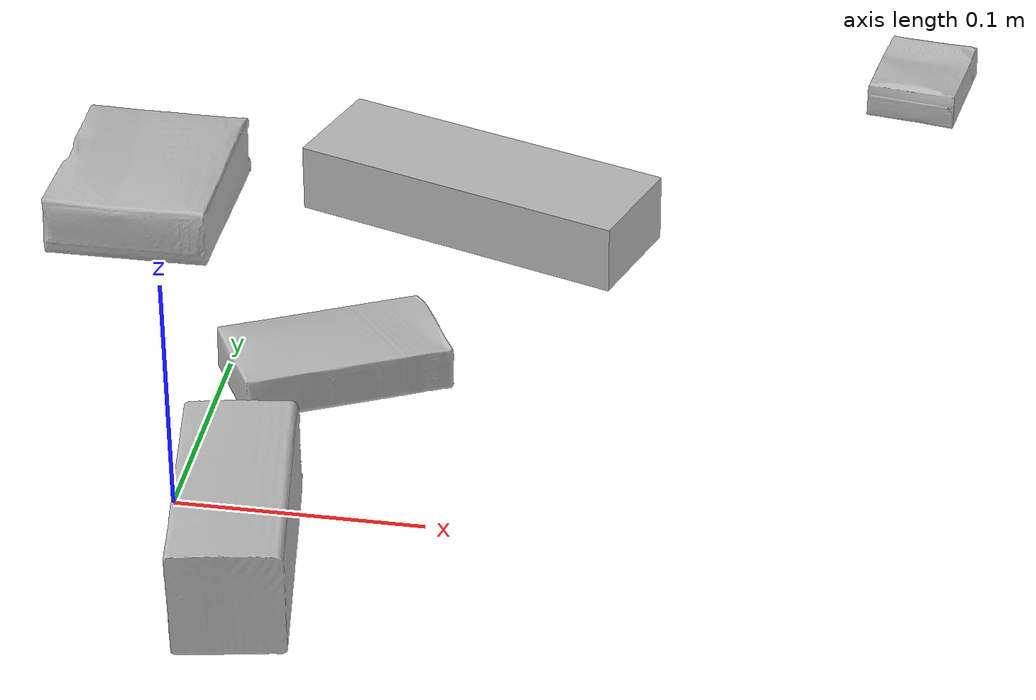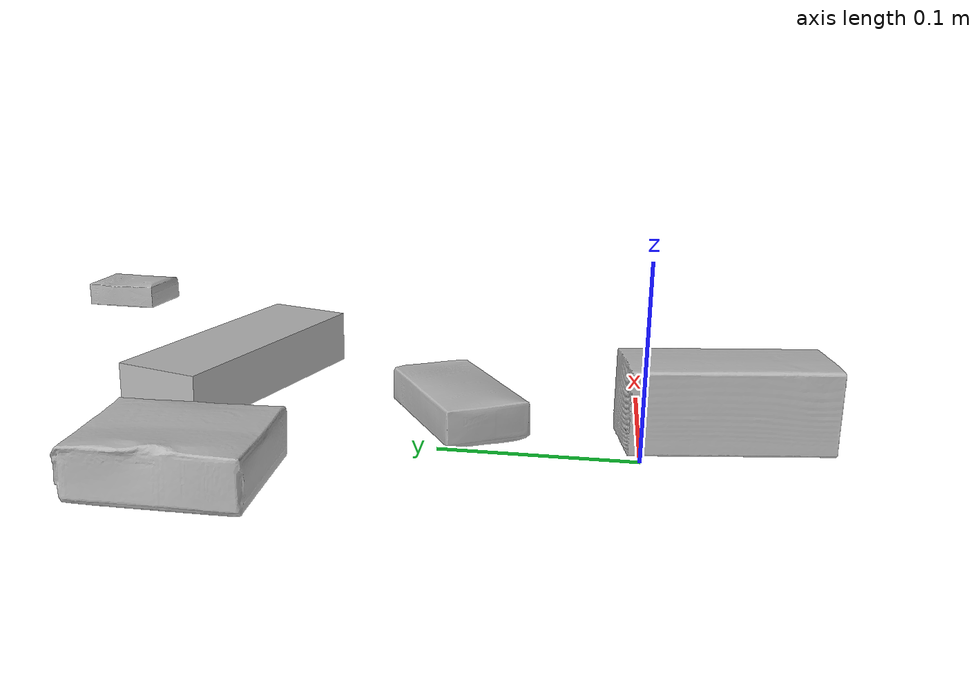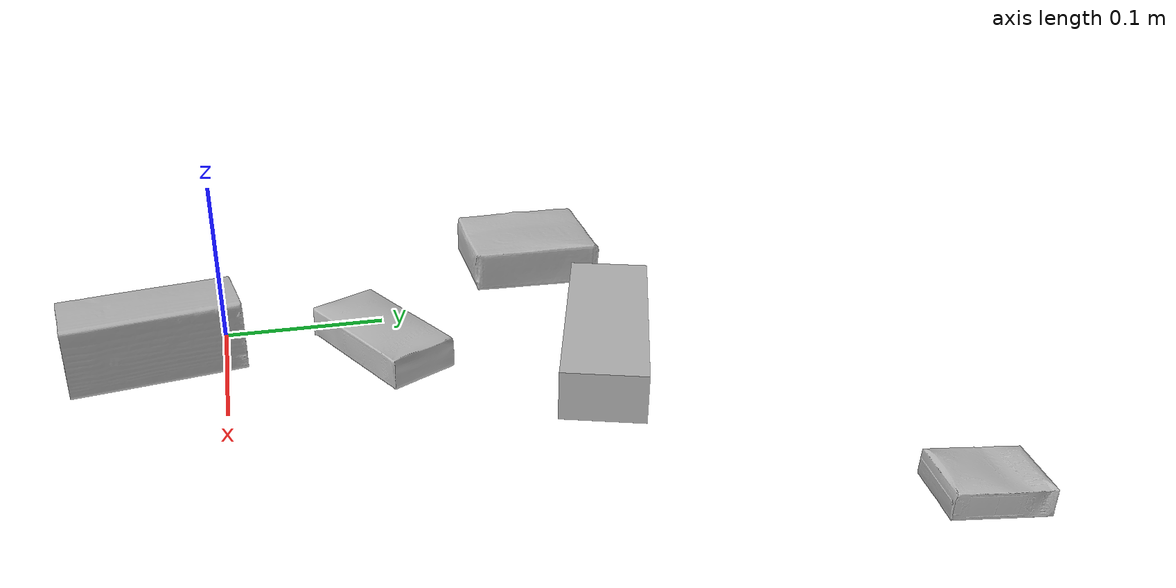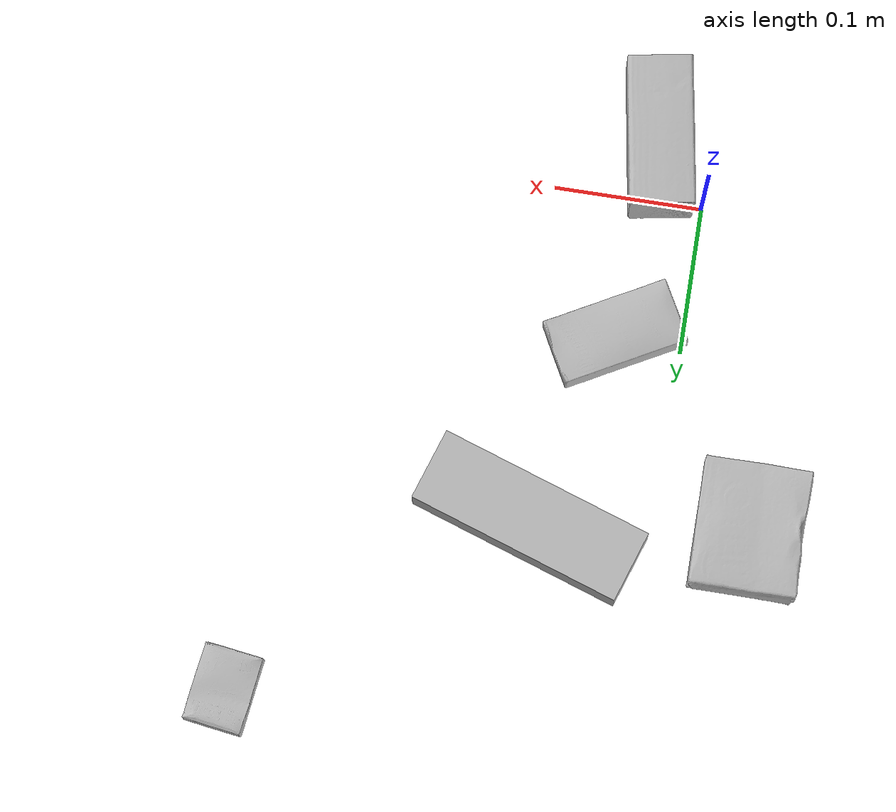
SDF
<sdf version="1.4">
  <world name="default">
    <light name="light1" type="point">
      <pose>0 0 1 0 0 0</pose>
      <diffuse>3 3 3 1</diffuse>
      <specular>3 3 3 1</specular>
    </light>
    <light name="light2" type="point">
      <pose>0 0.5 2 0 0 0</pose>
      <diffuse>1 1 1 1</diffuse>
      <specular>1 1 1 1</specular>
    </light>
    <light name="light3" type="point">
      <pose>0 0.5 2 0 0 0</pose>
      <diffuse>3 3 3 1</diffuse>
      <specular>3 3 3 1</specular>
    </light>
    <scene>
      <ambient>0.7 0.7 0.7</ambient>
    </scene>
    <model name="box1">
      <link name="link_box1">
        <collision name="default">
          <geometry>
            <mesh>
              <uri>model://sugar_box/collision_meshes/collision.obj</uri>
              <scale>0.5 0.5 0.5</scale>
            </mesh>
          </geometry>
          <surface>
            <friction>
              <ode>
                <mu>0.5</mu>
                <mu2>0.5</mu2>
              </ode>
            </friction>
          <contact>
        <ode>
            <max_vel>0</max_vel>
            <min_depth>0.0001</min_depth>
            <kp>1e8</kp>
        </ode>
    </contact></surface>
        </collision>
        <visual name="default">
          <geometry>
            <mesh>
              <uri>model://sugar_box/visual_meshes/visual.dae</uri>
              <scale>0.5 0.5 0.5</scale>
            </mesh>
          </geometry>
        </visual>
        <inertial>
          <mass>0.05016465485095978</mass>
          <pose>0.0005171863595023751 1.924554817378521e-05 -0.0001818240125430748 -0.00040462615463102695 0.0010506635220671036 0.0026153792546614123</pose>
          <inertia>
            <ixx>1.0449262e-05</ixx>
            <iyy>3.3774166e-05</iyy>
            <izz>4.0431696e-05</izz>
            <ixy>0</ixy>
            <ixz>0</ixz>
            <iyz>0</iyz>
          </inertia>
        </inertial>
      </link>
      <pose>0.0452413335442543 0.09526067972183228 0.011399300768971443 0.0007754767026253254 -0.023432453810707934 -2.6544762608328587</pose>
    </model>
    <model name="box2">
      <link name="link_box2">
        <collision name="default">
          <geometry>
            <mesh>
              <uri>model://cracker_box/collision_meshes/collision.obj</uri>
              <scale>0.25 0.25 0.25</scale>
            </mesh>
          </geometry>
          <surface>
            <friction>
              <ode>
                <mu>0.5</mu>
                <mu2>0.5</mu2>
              </ode>
            </friction>
          <contact>
        <ode>
            <max_vel>0</max_vel>
            <min_depth>0.0001</min_depth>
            <kp>1e8</kp>
        </ode>
    </contact></surface>
        </collision>
        <visual name="default">
          <geometry>
            <mesh>
              <uri>model://cracker_box/visual_meshes/visual.dae</uri>
              <scale>0.25 0.25 0.25</scale>
            </mesh>
          </geometry>
        </visual>
        <inertial>
          <mass>0.05325852707028389</mass>
          <pose>0.0002366033149883151 6.358561950037256e-05 -0.0004257383698131889 -0.000316207624135088 -0.011106486806293444 0.0025467950014945295</pose>
          <inertia>
            <ixx>8.46662e-06</ixx>
            <iyy>1.3980052e-05</iyy>
            <izz>1.995082e-05</izz>
            <ixy>0</ixy>
            <ixz>0</ixz>
            <iyz>0</iyz>
          </inertia>
        </inertial>
      </link>
      <pose>0.264946848154068 0.37064144015312195 0.009120453149080276 -0.011788139035125093 -0.007367127695391342 -1.7135059053076374</pose>
    </model>
    <model name="box3">
      <link name="link_box3">
        <collision name="default">
          <geometry>
            <mesh>
              <uri>model://wood_block/collision_meshes/collision.obj</uri>
              <scale>0.5 0.5 0.5</scale>
            </mesh>
          </geometry>
          <surface>
            <friction>
              <ode>
                <mu>0.5</mu>
                <mu2>0.5</mu2>
              </ode>
            </friction>
          <contact>
        <ode>
            <max_vel>0</max_vel>
            <min_depth>0.0001</min_depth>
            <kp>1e8</kp>
        </ode>
    </contact></surface>
        </collision>
        <visual name="default">
          <geometry>
            <mesh>
              <uri>model://wood_block/visual_meshes/visual.dae</uri>
              <scale>0.5 0.5 0.5</scale>
            </mesh>
          </geometry>
        </visual>
        <inertial>
          <mass>0.24977724254131317</mass>
          <pose>-2.9066577553749084e-06 -0.00028540476341731846 0.00013204291462898254 -0.05220975529066727 -0.005192695547513155 -0.006861377927637377</pose>
          <inertia>
            <ixx>8.355995e-05</ixx>
            <iyy>0.00026396586</iyy>
            <izz>0.00026297852</izz>
            <ixy>0</ixy>
            <ixz>0</ixz>
            <iyz>0</iyz>
          </inertia>
        </inertial>
      </link>
      <pose>0.03493351489305496 -0.0409262590110302 0.0226292721927166 -0.005208489242225259 0.005718739295747887 1.7346121816707418</pose>
    </model>
    <model name="box4">
      <link name="link_box4">
        <collision name="default">
          <geometry>
            <mesh>
              <uri>model://gelatin_box/collision_meshes/collision.obj</uri>
              <scale>1.0 1.0 1.0</scale>
            </mesh>
          </geometry>
          <surface>
            <friction>
              <ode>
                <mu>0.5</mu>
                <mu2>0.5</mu2>
              </ode>
            </friction>
          <contact>
        <ode>
            <max_vel>0</max_vel>
            <min_depth>0.0001</min_depth>
            <kp>1e8</kp>
        </ode>
    </contact></surface>
        </collision>
        <visual name="default">
          <geometry>
            <mesh>
              <uri>model://gelatin_box/visual_meshes/visual.dae</uri>
              <scale>1.0 1.0 1.0</scale>
            </mesh>
          </geometry>
        </visual>
        <inertial>
          <mass>0.142814502120018</mass>
          <pose>0.0004319618456065655 0.00011156871187267825 -0.0003640321083366871 -0.0010503719804291966 -0.004755819155973465 0.01644055947187314</pose>
          <inertia>
            <ixx>0.000100815385</ixx>
            <iyy>7.20119e-05</iyy>
            <izz>0.00015346348</izz>
            <ixy>0</ixy>
            <ixz>0</ixz>
            <iyz>0</iyz>
          </inertia>
        </inertial>
      </link>
      <pose>-0.06254119426012039 0.21378251910209656 0.015168311074376106 0.00559740027980623 -0.007304465518429235 3.1308670287253584</pose>
    </model>
    <model name="box5">
      <link name="link_box5">
        <collision name="default">
          <geometry>
            <mesh>
              <uri>model://jenga/collision_meshes/collision.obj</uri>
              <scale>1.0 1.0 1.0</scale>
            </mesh>
          </geometry>
          <surface>
            <friction>
              <ode>
                <mu>0.5</mu>
                <mu2>0.5</mu2>
              </ode>
            </friction>
          <contact>
        <ode>
            <max_vel>0</max_vel>
            <min_depth>0.0001</min_depth>
            <kp>1e8</kp>
        </ode>
    </contact></surface>
        </collision>
        <visual name="default">
          <geometry>
            <mesh>
              <uri>model://jenga/visual_meshes/visual.dae</uri>
              <scale>1.0 1.0 1.0</scale>
            </mesh>
          </geometry>
        </visual>
        <inertial>
          <mass>0.11303283274173737</mass>
          <pose>-2.502855807051674e-07 -0.00010250010382151231 -4.0923401684267446e-05 0.0 -7.342155186052628e-07 0.0</pose>
          <inertia>
            <ixx>3.127893e-05</ixx>
            <iyy>0.00021194515</iyy>
            <izz>0.00022626946</izz>
            <ixy>0</ixy>
            <ixz>0</ixz>
            <iyz>0</iyz>
          </inertia>
        </inertial>
      </link>
      <pose>0.08256236463785172 0.22842563688755035 0.014999999664723873 -3.1065039115492797e-09 -8.051858788718056e-10 2.817775666168384</pose>
    </model>
  <physics type="ode">
      <max_contacts>50</max_contacts>
      <ode>
        <solver>
          <type>quick</type>
          <iters>75</iters>
        </solver>
        <constraints>
          <contact_max_correcting_vel>0</contact_max_correcting_vel>
          <contact_surface_layer>0</contact_surface_layer>
        </constraints>
      </ode>
    </physics></world>
</sdf>
